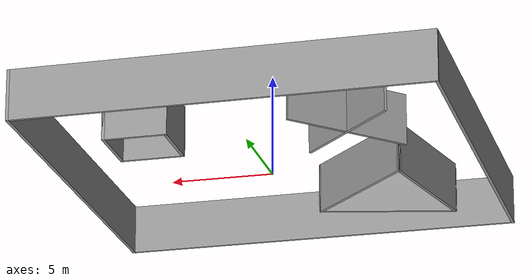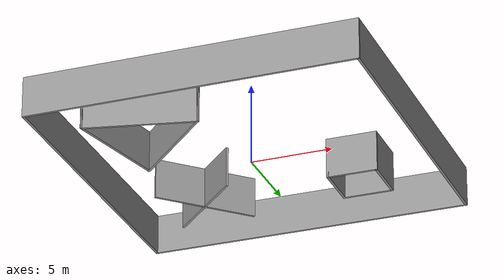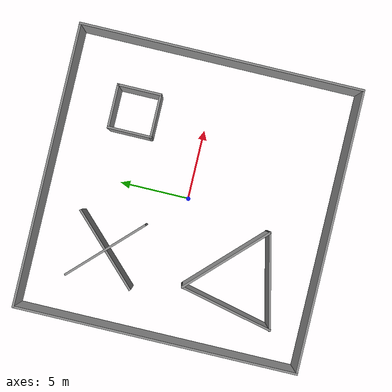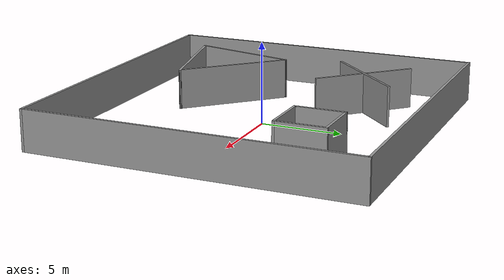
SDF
<?xml version='1.0'?>
<sdf version='1.6'>
  <model name='SAC_XSUGV_2'>
    <pose frame=''>0 0 0 0 -0 0</pose>
    <link name='Wall_26'>
      <collision name='Wall_26_Collision'>
        <geometry>
          <box>
            <size>20.15 0.15 2.5</size>
          </box>
        </geometry>
        <pose frame=''>0 0 1.25 0 -0 0</pose>
      </collision>
      <visual name='Wall_26_Visual'>
        <pose frame=''>0 0 1.25 0 -0 0</pose>
        <geometry>
          <box>
            <size>20.15 0.15 2.5</size>
          </box>
        </geometry>
        <material>
          <script>
            <uri>file://media/materials/scripts/gazebo.material</uri>
            <name>Gazebo/Grey</name>
          </script>
          <ambient>1 1 1 1</ambient>
        </material>
        <meta>
          <layer>0</layer>
        </meta>
      </visual>
      <pose frame=''>10 0 0 0 -0 -1.5708</pose>
    </link>
    <link name='Wall_28'>
      <collision name='Wall_28_Collision'>
        <geometry>
          <box>
            <size>20.15 0.15 2.5</size>
          </box>
        </geometry>
        <pose frame=''>0 0 1.25 0 -0 0</pose>
      </collision>
      <visual name='Wall_28_Visual'>
        <pose frame=''>0 0 1.25 0 -0 0</pose>
        <geometry>
          <box>
            <size>20.15 0.15 2.5</size>
          </box>
        </geometry>
        <material>
          <script>
            <uri>file://media/materials/scripts/gazebo.material</uri>
            <name>Gazebo/Grey</name>
          </script>
          <ambient>1 1 1 1</ambient>
        </material>
        <meta>
          <layer>0</layer>
        </meta>
      </visual>
      <pose frame=''>0 10 0 0 -0 3.14159</pose>
    </link>
    <link name='Wall_30'>
      <collision name='Wall_30_Collision'>
        <geometry>
          <box>
            <size>20.15 0.15 2.5</size>
          </box>
        </geometry>
        <pose frame=''>0 0 1.25 0 -0 0</pose>
      </collision>
      <visual name='Wall_30_Visual'>
        <pose frame=''>0 0 1.25 0 -0 0</pose>
        <geometry>
          <box>
            <size>20.15 0.15 2.5</size>
          </box>
        </geometry>
        <material>
          <script>
            <uri>file://media/materials/scripts/gazebo.material</uri>
            <name>Gazebo/Grey</name>
          </script>
          <ambient>1 1 1 1</ambient>
        </material>
        <meta>
          <layer>0</layer>
        </meta>
      </visual>
      <pose frame=''>-10 0 0 0 -0 -1.5708</pose>
    </link>
    <link name='Wall_32'>
      <collision name='Wall_32_Collision'>
        <geometry>
          <box>
            <size>20.15 0.15 2.5</size>
          </box>
        </geometry>
        <pose frame=''>0 0 1.25 0 -0 0</pose>
      </collision>
      <visual name='Wall_32_Visual'>
        <pose frame=''>0 0 1.25 0 -0 0</pose>
        <geometry>
          <box>
            <size>20.15 0.15 2.5</size>
          </box>
        </geometry>
        <material>
          <script>
            <uri>file://media/materials/scripts/gazebo.material</uri>
            <name>Gazebo/Grey</name>
          </script>
          <ambient>1 1 1 1</ambient>
        </material>
        <meta>
          <layer>0</layer>
        </meta>
      </visual>
      <pose frame=''>0 -10 0 0 -0 0</pose>
    </link>
    <link name='Wall_34'>
      <collision name='Wall_34_Collision'>
        <geometry>
          <box>
            <size>3.15 0.15 2.5</size>
          </box>
        </geometry>
        <pose frame=''>0 0 1.25 0 -0 0</pose>
      </collision>
      <visual name='Wall_34_Visual'>
        <pose frame=''>0 0 1.25 0 -0 0</pose>
        <geometry>
          <box>
            <size>3.15 0.15 2.5</size>
          </box>
        </geometry>
        <material>
          <script>
            <uri>file://media/materials/scripts/gazebo.material</uri>
            <name>Gazebo/Grey</name>
          </script>
          <ambient>1 1 1 1</ambient>
        </material>
        <meta>
          <layer>0</layer>
        </meta>
      </visual>
      <pose frame=''>3.5 5 0 0 -0 1.5708</pose>
    </link>
    <link name='Wall_35'>
      <collision name='Wall_35_Collision'>
        <geometry>
          <box>
            <size>3.15 0.15 2.5</size>
          </box>
        </geometry>
        <pose frame=''>0 0 1.25 0 -0 0</pose>
      </collision>
      <visual name='Wall_35_Visual'>
        <pose frame=''>0 0 1.25 0 -0 0</pose>
        <geometry>
          <box>
            <size>3.15 0.15 2.5</size>
          </box>
        </geometry>
        <material>
          <script>
            <uri>file://media/materials/scripts/gazebo.material</uri>
            <name>Gazebo/Grey</name>
          </script>
          <ambient>1 1 1 1</ambient>
        </material>
        <meta>
          <layer>0</layer>
        </meta>
      </visual>
      <pose frame=''>5 6.5 0 0 -0 0</pose>
    </link>
    <link name='Wall_36'>
      <collision name='Wall_36_Collision'>
        <geometry>
          <box>
            <size>3.15 0.15 2.5</size>
          </box>
        </geometry>
        <pose frame=''>0 0 1.25 0 -0 0</pose>
      </collision>
      <visual name='Wall_36_Visual'>
        <pose frame=''>0 0 1.25 0 -0 0</pose>
        <geometry>
          <box>
            <size>3.15 0.15 2.5</size>
          </box>
        </geometry>
        <material>
          <script>
            <uri>file://media/materials/scripts/gazebo.material</uri>
            <name>Gazebo/Grey</name>
          </script>
          <ambient>1 1 1 1</ambient>
        </material>
        <meta>
          <layer>0</layer>
        </meta>
      </visual>
      <pose frame=''>6.5 5 0 0 -0 -1.5708</pose>
    </link>
    <link name='Wall_37'>
      <collision name='Wall_37_Collision'>
        <geometry>
          <box>
            <size>3.15 0.15 2.5</size>
          </box>
        </geometry>
        <pose frame=''>0 0 1.25 0 -0 0</pose>
      </collision>
      <visual name='Wall_37_Visual'>
        <pose frame=''>0 0 1.25 0 -0 0</pose>
        <geometry>
          <box>
            <size>3.15 0.15 2.5</size>
          </box>
        </geometry>
        <material>
          <script>
            <uri>file://media/materials/scripts/gazebo.material</uri>
            <name>Gazebo/Grey</name>
          </script>
          <ambient>1 1 1 1</ambient>
        </material>
        <meta>
          <layer>0</layer>
        </meta>
      </visual>
      <pose frame=''>5 3.5 0 0 -0 3.14159</pose>
    </link>
    <link name='Wall_39'>
      <collision name='Wall_39_Collision'>
        <geometry>
          <box>
            <size>6.51396 0.15 2.5</size>
          </box>
        </geometry>
        <pose frame=''>0 0 1.25 0 -0 0</pose>
      </collision>
      <visual name='Wall_39_Visual'>
        <pose frame=''>0 0 1.25 0 -0 0</pose>
        <geometry>
          <box>
            <size>6.51396 0.15 2.5</size>
          </box>
        </geometry>
        <material>
          <script>
            <uri>file://media/materials/scripts/gazebo.material</uri>
            <name>Gazebo/Grey</name>
          </script>
          <ambient>1 1 1 1</ambient>
        </material>
        <meta>
          <layer>0</layer>
        </meta>
      </visual>
      <pose frame=''>-4.75 4.75 0 0 -0 -0.785398</pose>
    </link>
    <link name='Wall_42'>
      <collision name='Wall_42_Collision'>
        <geometry>
          <box>
            <size>6.51396 0.15 2.5</size>
          </box>
        </geometry>
        <pose frame=''>0 0 1.25 0 -0 0</pose>
      </collision>
      <visual name='Wall_42_Visual'>
        <pose frame=''>0 0 1.25 0 -0 0</pose>
        <geometry>
          <box>
            <size>6.51396 0.15 2.5</size>
          </box>
        </geometry>
        <material>
          <script>
            <uri>file://media/materials/scripts/gazebo.material</uri>
            <name>Gazebo/Grey</name>
          </script>
          <ambient>1 1 1 1</ambient>
        </material>
        <meta>
          <layer>0</layer>
        </meta>
      </visual>
      <pose frame=''>-4.75 4.75 0 0 -0 -2.35619</pose>
    </link>
    <link name='Wall_44'>
      <collision name='Wall_44_Collision'>
        <geometry>
          <box>
            <size>7.22107 0.15 2.5</size>
          </box>
        </geometry>
        <pose frame=''>0 0 1.25 0 -0 0</pose>
      </collision>
      <visual name='Wall_44_Visual'>
        <pose frame=''>0 0 1.25 0 -0 0</pose>
        <geometry>
          <box>
            <size>7.22107 0.15 2.5</size>
          </box>
        </geometry>
        <material>
          <script>
            <uri>file://media/materials/scripts/gazebo.material</uri>
            <name>Gazebo/Grey</name>
          </script>
          <ambient>1 1 1 1</ambient>
        </material>
        <meta>
          <layer>0</layer>
        </meta>
      </visual>
      <pose frame=''>-3.5 -3.5 0 0 -0 -0.785398</pose>
    </link>
    <link name='Wall_45'>
      <collision name='Wall_45_Collision'>
        <geometry>
          <box>
            <size>6.82083 0.15 2.5</size>
          </box>
        </geometry>
        <pose frame=''>0 0 1.25 0 -0 0</pose>
      </collision>
      <visual name='Wall_45_Visual'>
        <pose frame=''>0 0 1.25 0 -0 0</pose>
        <geometry>
          <box>
            <size>6.82083 0.15 2.5</size>
          </box>
        </geometry>
        <material>
          <script>
            <uri>file://media/materials/scripts/gazebo.material</uri>
            <name>Gazebo/Grey</name>
          </script>
          <ambient>1 1 1 1</ambient>
        </material>
        <meta>
          <layer>0</layer>
        </meta>
      </visual>
      <pose frame=''>-4.25 -6.75 0 0 -0 -2.91479</pose>
    </link>
    <link name='Wall_46'>
      <collision name='Wall_46_Collision'>
        <geometry>
          <box>
            <size>6.82083 0.15 2.5</size>
          </box>
        </geometry>
        <pose frame=''>0 0 1.25 0 -0 0</pose>
      </collision>
      <visual name='Wall_46_Visual'>
        <pose frame=''>0 0 1.25 0 -0 0</pose>
        <geometry>
          <box>
            <size>6.82083 0.15 2.5</size>
          </box>
        </geometry>
        <material>
          <script>
            <uri>file://media/materials/scripts/gazebo.material</uri>
            <name>Gazebo/Grey</name>
          </script>
          <ambient>1 1 1 1</ambient>
        </material>
        <meta>
          <layer>0</layer>
        </meta>
      </visual>
      <pose frame=''>-6.75 -4.25 0 0 -0 1.344</pose>
    </link>
    <static>1</static>
  </model>
</sdf>
